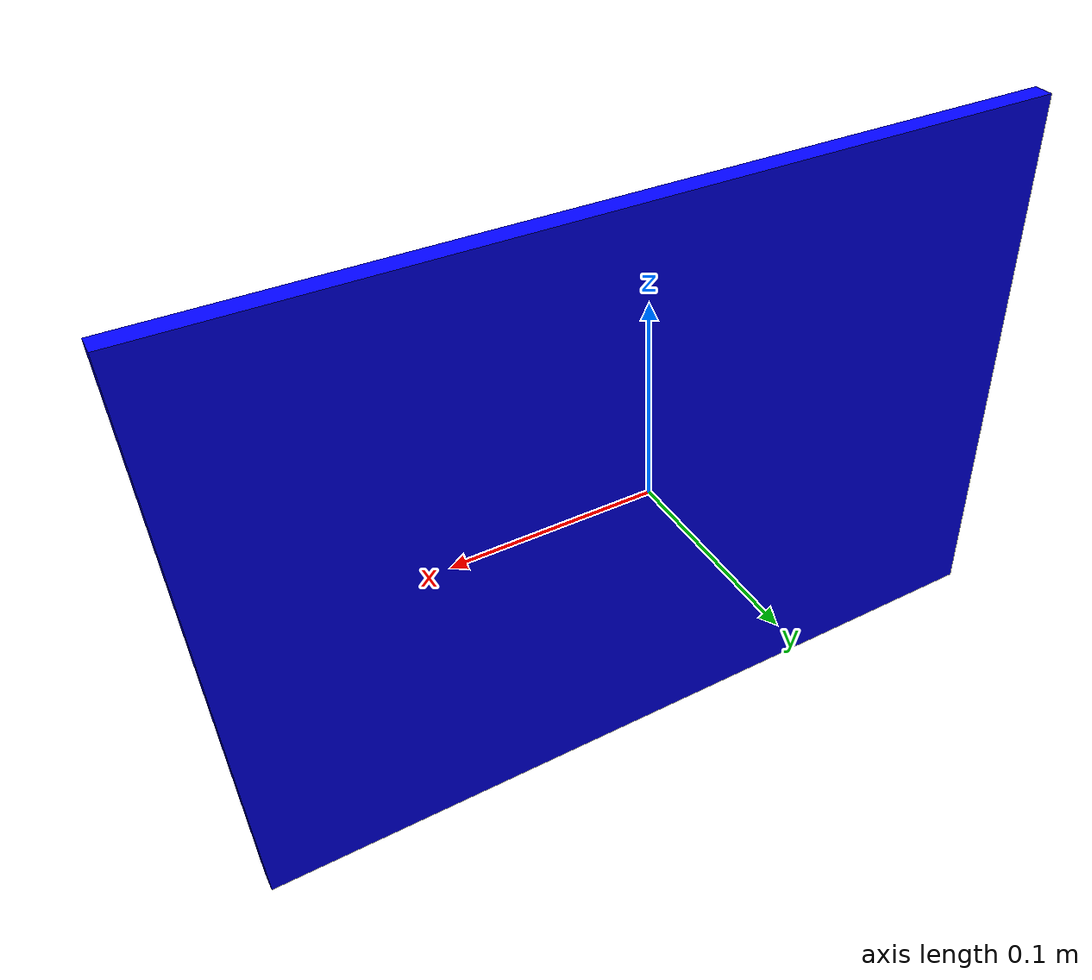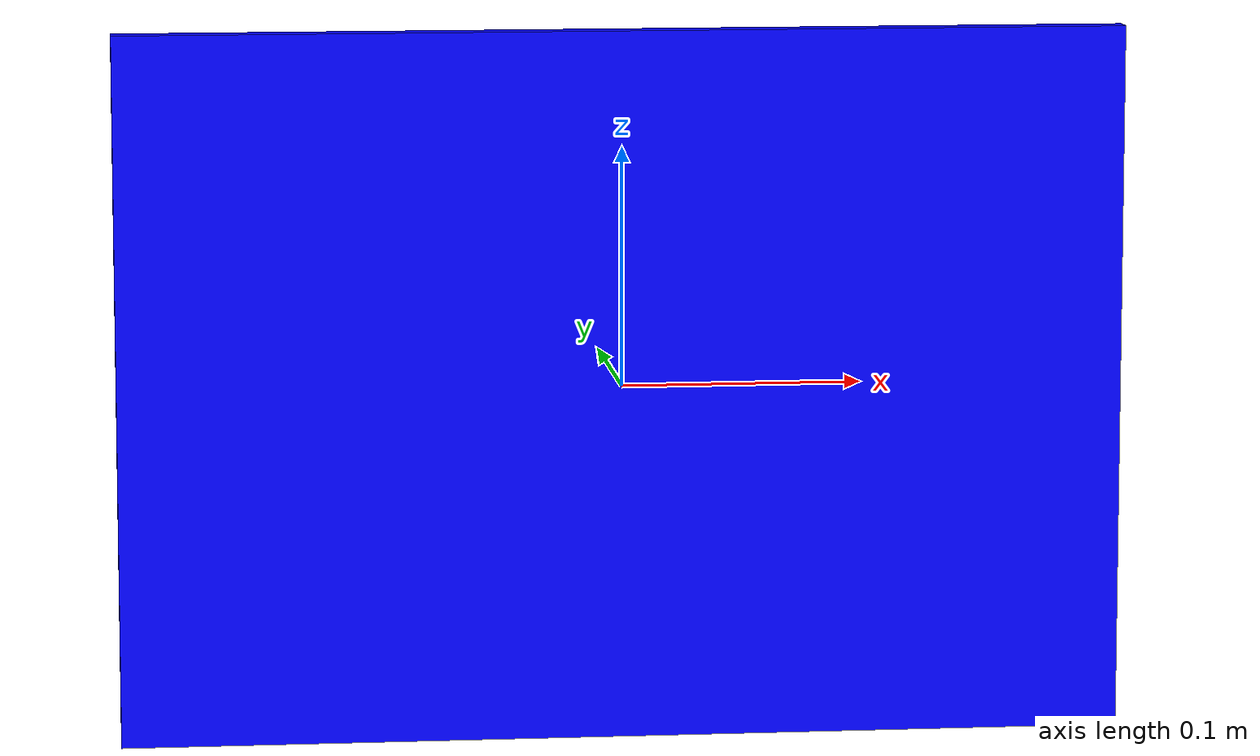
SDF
<?xml version='1.0'?>
<sdf version='1.6'>
  <model name='marker_blue'>
    <link name='link_1'>
      <inertial>
        <mass>1</mass>
        <inertia>
          <ixx>0.166667</ixx>
          <ixy>0</ixy>
          <ixz>0</ixz>
          <iyy>0.166667</iyy>
          <iyz>0</iyz>
          <izz>0.166667</izz>
        </inertia>
        <pose frame=''>0 0 0 0 -0 0</pose>
      </inertial>
      <pose frame=''>4e-06 0 0 0 -0 0</pose>
      <gravity>1</gravity>
      <self_collide>0</self_collide>
      <kinematic>0</kinematic>
      <enable_wind>0</enable_wind>
      <visual name='visual'>
        <pose frame=''>0 0 0 0 -0 0</pose>
        <geometry>
          <box>
            <size>0.42 0.01 0.297</size>
          </box>
        </geometry>
        <material>
          <lighting>1</lighting>
          <script>
            <uri>file://media/materials/scripts/gazebo.material</uri>
            <name>Gazebo/Grey</name>
          </script>
          <shader type='normal_map_object_space'>
            <normal_map>__default__</normal_map>
          </shader>
          <ambient>0 0 1 1</ambient>
          <diffuse>0 0 0 0.5</diffuse>
          <specular>0 0 1 1</specular>
          <emissive>0 0 1 1</emissive>
        </material>
        <transparency>0</transparency>
        <cast_shadows>1</cast_shadows>
      </visual>
    </link>
    <static>1</static>
    <allow_auto_disable>1</allow_auto_disable>
  </model>
</sdf>
